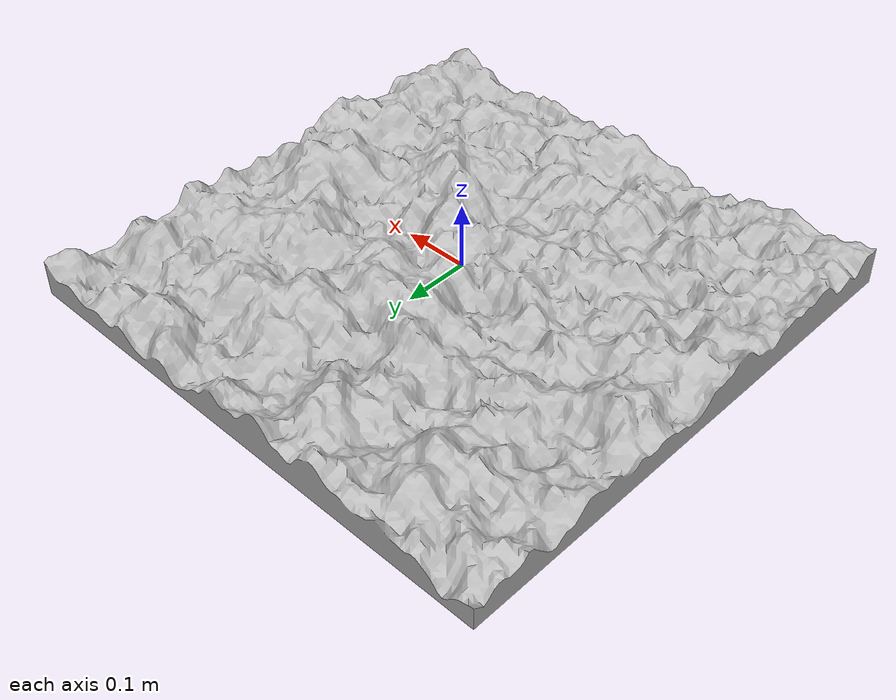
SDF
<?xml version="1.0" ?>
<sdf version="1.5">
  <model name="chao_aspero">
    <link name="link">
      <collision name="collision">
        <geometry>
          <mesh>
            <scale>0.4 0.4 0.4</scale>
            <uri>model://chao_aspero/meshes/chao_aspero.stl</uri>
          </mesh>
        </geometry>
      </collision>
      <visual name="visual">
        <geometry>
          <mesh>
            <scale>0.4 0.4 0.4</scale>
            <uri>model://chao_aspero/meshes/chao_aspero.dae</uri>
          </mesh>
        </geometry>
      </visual>
    </link>
  </model>
</sdf>
